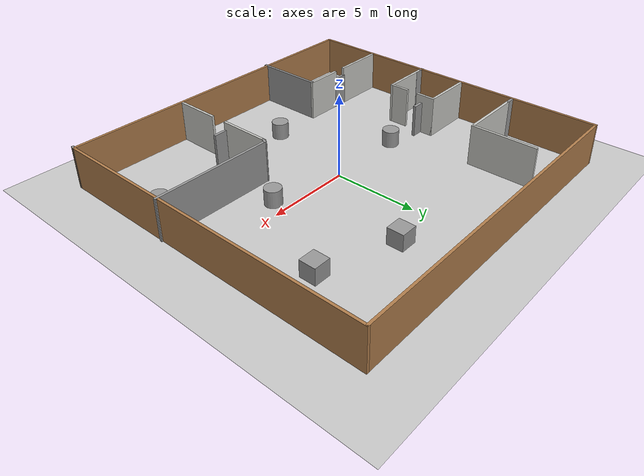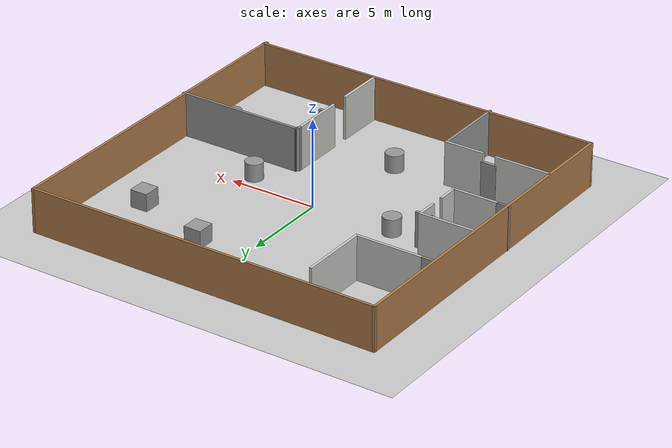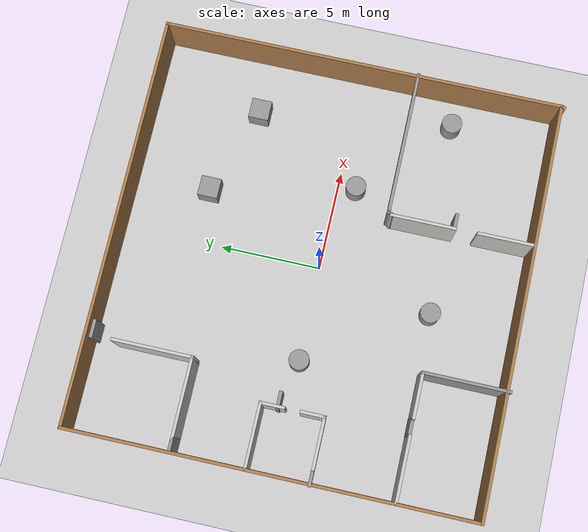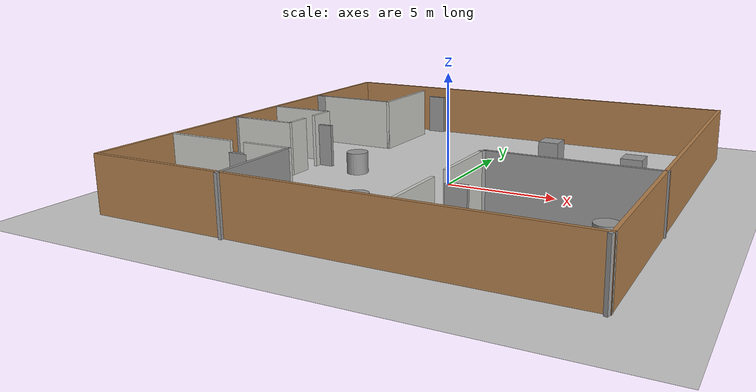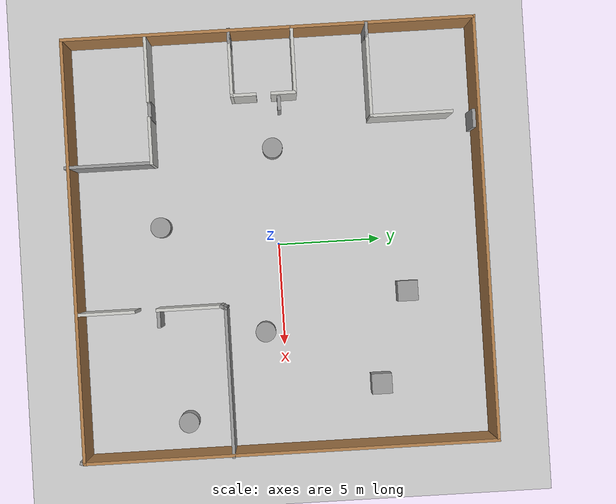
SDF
<sdf version="1.7">
 <world name="default">
  <light name="sun" type="directional">
   <pose>0 0 10 0 -0 0</pose>
   <diffuse>0.8 0.8 0.8 1</diffuse>
   <specular>0.2 0.2 0.2 1</specular>
   <attenuation>
    <range>1000</range>
    <constant>0.9</constant>
    <linear>0.01</linear>
    <quadratic>0.001</quadratic>
   </attenuation>
   <direction>-0.5 0.1 -0.9</direction>
   <spot><inner_angle>0</inner_angle><outer_angle>0</outer_angle><falloff>0</falloff></spot>
  </light>
  <model name="ground_plane">
   <static>1</static>
   <link name="link">
    <collision name="collision">
     <geometry><plane><normal>0 0 1</normal><size>100 100</size></plane></geometry>
     <surface>
      <contact><collide_bitmask>65535</collide_bitmask></contact>
      <friction><ode><mu>100</mu><mu2>50</mu2></ode></friction>
     </surface>
    </collision>
    <visual name="visual">
     <cast_shadows>0</cast_shadows>
     <geometry><plane><normal>0 0 1</normal><size>100 100</size></plane></geometry>
     <material>
      <script><uri>file://media/materials/scripts/gazebo.material</uri><name>Gazebo/Grey</name></script>
     </material>
    </visual>
   </link>
  </model>
  <gravity>0 0 -9.8</gravity>
  <magnetic_field>6e-06 2.3e-05 -4.2e-05</magnetic_field>
  <atmosphere type="adiabatic"/>
  <physics type="ode">
   <max_step_size>0.001</max_step_size>
   <real_time_factor>1</real_time_factor>
   <real_time_update_rate>1000</real_time_update_rate>
  </physics>
  <scene><ambient>0.4 0.4 0.4 1</ambient><background>0.7 0.7 0.7 1</background><shadows>1</shadows></scene>
  <spherical_coordinates>
   <surface_model>EARTH_WGS84</surface_model>
   <latitude_deg>0</latitude_deg>
   <longitude_deg>0</longitude_deg>
   <elevation>0</elevation>
   <heading_deg>0</heading_deg>
  </spherical_coordinates>
  <model name="shop">
   <pose>-0.17448 -0.04481 0 0 -0 0</pose>
   <link name="Door_0">
    <collision name="Door_0_Collision">
     <geometry><box><size>0.9 0.17 2</size></box></geometry>
     <pose>0 0 1 0 -0 0</pose>
    </collision>
    <visual name="Door_0_Visual">
     <pose>0 0 1 0 -0 0</pose>
     <geometry><box><size>0.9 0.17 2</size></box></geometry>
     <material>
      <script><uri>file://media/materials/scripts/gazebo.material</uri><name>Gazebo/Grey</name></script>
     </material>
    </visual>
    <pose>-5.35451 9.82138 0 0 -0 0</pose>
   </link>
   <link name="Door_1">
    <collision name="Door_1_Collision">
     <geometry><box><size>0.9 0.17 2</size></box></geometry>
     <pose>0 0 1 0 -0 0</pose>
    </collision>
    <visual name="Door_1_Visual">
     <pose>0 0 1 0 -0 0</pose>
     <geometry><box><size>0.9 0.17 2</size></box></geometry>
     <material>
      <script><uri>file://media/materials/scripts/gazebo.material</uri><name>Gazebo/Grey</name></script>
     </material>
    </visual>
    <pose>3.45188 -5.96153 0 0 -0 0</pose>
   </link>
   <link name="Door_2">
    <collision name="Door_2_Collision">
     <geometry><box><size>0.9 0.17 2</size></box></geometry>
     <pose>0 0 1 0 -0 0</pose>
    </collision>
    <visual name="Door_2_Visual">
     <pose>0 0 1 0 -0 0</pose>
     <geometry><box><size>0.9 0.17 2</size></box></geometry>
     <material>
      <script><uri>file://media/materials/scripts/gazebo.material</uri><name>Gazebo/Grey</name></script>
     </material>
    </visual>
    <pose>-6.61322 -5.83259 0 0 -0 0</pose>
   </link>
   <link name="Door_3">
    <collision name="Door_3_Collision">
     <geometry><box><size>0.9 0.17 2</size></box></geometry>
     <pose>0 0 1 0 -0 0</pose>
    </collision>
    <visual name="Door_3_Visual">
     <pose>0 0 1 0 -0 0</pose>
     <geometry><box><size>0.9 0.17 2</size></box></geometry>
     <material>
      <script><uri>file://media/materials/scripts/gazebo.material</uri><name>Gazebo/Grey</name></script>
     </material>
    </visual>
    <pose>-6.73628 0.443254 0 0 -0 0</pose>
   </link>
   <link name="Wall_1">
    <collision name="Wall_1_Collision">
     <geometry><box><size>4 0.15 2.5</size></box></geometry>
     <pose>0 0 1.25 0 -0 0</pose>
    </collision>
    <visual name="Wall_1_Visual">
     <pose>0 0 1.25 0 -0 0</pose>
     <geometry><box><size>4 0.15 2.5</size></box></geometry>
     <material>
      <script><uri>file://media/materials/scripts/gazebo.material</uri><name>Gazebo/CeilingTiled</name></script>
      <ambient>1 1 1 1</ambient>
     </material>
     <meta><layer>0</layer></meta>
    </visual>
    <pose>-7.61817 4.83351 0 0 -0 0</pose>
   </link>
   <link name="Wall_11">
    <collision name="Wall_11_Collision">
     <geometry><box><size>7.25 0.15 2.5</size></box></geometry>
     <pose>0 0 1.25 0 -0 0</pose>
    </collision>
    <visual name="Wall_11_Visual">
     <pose>0 0 1.25 0 -0 0</pose>
     <geometry><box><size>7.25 0.15 2.5</size></box></geometry>
     <material>
      <script><uri>file://media/materials/scripts/gazebo.material</uri><name>Gazebo/Grey</name></script>
      <ambient>1 1 1 1</ambient>
     </material>
     <meta><layer>0</layer></meta>
    </visual>
    <pose>6.68019 -2.69355 0 0 -0 3.14159</pose>
   </link>
   <link name="Wall_18">
    <collision name="Wall_18_Collision">
     <geometry><box><size>3.25 0.15 2.5</size></box></geometry>
     <pose>0 0 1.25 0 -0 0</pose>
    </collision>
    <visual name="Wall_18_Visual">
     <pose>0 0 1.25 0 -0 0</pose>
     <geometry><box><size>3.25 0.15 2.5</size></box></geometry>
     <material>
      <script><uri>file://media/materials/scripts/gazebo.material</uri><name>Gazebo/CeilingTiled</name></script>
      <ambient>1 1 1 1</ambient>
     </material>
     <meta><layer>0</layer></meta>
    </visual>
    <pose>3.02225 -4.41015 0 0 -0 1.5708</pose>
   </link>
   <link name="Wall_19">
    <collision name="Wall_19_Collision">
     <geometry><box><size>0.378834 0.15 2.5</size></box></geometry>
     <pose>0 0 1.25 0 -0 0</pose>
    </collision>
    <visual name="Wall_19_Visual">
     <pose>0 0 1.25 0 -0 0</pose>
     <geometry><box><size>0.378834 0.15 2.5</size></box></geometry>
     <material>
      <script><uri>file://media/materials/scripts/gazebo.material</uri><name>Gazebo/Grey</name></script>
      <ambient>1 1 1 1</ambient>
     </material>
     <meta><layer>0</layer></meta>
    </visual>
    <pose>3.07622 -2.79444 0 0 -0 1.07959</pose>
   </link>
   <link name="Wall_2">
    <collision name="Wall_2_Collision">
     <geometry><box><size>4 0.15 2.5</size></box></geometry>
     <pose>0 0 1.25 0 -0 0</pose>
    </collision>
    <visual name="Wall_2_Visual">
     <pose>0 0 1.25 0 -0 0</pose>
     <geometry><box><size>4 0.15 2.5</size></box></geometry>
     <material>
      <script><uri>file://media/materials/scripts/gazebo.material</uri><name>Gazebo/CeilingTiled</name></script>
      <ambient>1 1 1 1</ambient>
     </material>
     <meta><layer>0</layer></meta>
    </visual>
    <pose>-5.69317 6.75851 0 0 -0 1.5708</pose>
   </link>
   <link name="Wall_24">
    <collision name="Wall_24_Collision">
     <geometry><box><size>4.25 0.15 2.5</size></box></geometry>
     <pose>0 0 1.25 0 -0 0</pose>
    </collision>
    <visual name="Wall_24_Visual">
     <pose>0 0 1.25 0 -0 0</pose>
     <geometry><box><size>4.25 0.15 2.5</size></box></geometry>
     <material>
      <script><uri>file://media/materials/scripts/gazebo.material</uri><name>Gazebo/Grey</name></script>
      <ambient>1 1 1 1</ambient>
     </material>
     <meta><layer>0</layer></meta>
    </visual>
    <pose>-4.04657 -7.92305 0 0 -0 -1.5708</pose>
   </link>
   <link name="Wall_26">
    <collision name="Wall_26_Collision">
     <geometry><box><size>3.25 0.15 2.5</size></box></geometry>
     <pose>0 0 1.25 0 -0 0</pose>
    </collision>
    <visual name="Wall_26_Visual">
     <pose>0 0 1.25 0 -0 0</pose>
     <geometry><box><size>3.25 0.15 2.5</size></box></geometry>
     <material>
      <script><uri>file://media/materials/scripts/gazebo.material</uri><name>Gazebo/CeilingTiled</name></script>
      <ambient>1 1 1 1</ambient>
     </material>
     <meta><layer>0</layer></meta>
    </visual>
    <pose>-8.59657 -5.83259 0 0 -0 0</pose>
   </link>
   <link name="Wall_28">
    <collision name="Wall_28_Collision">
     <geometry><box><size>2.30038 0.15 2.5</size></box></geometry>
     <pose>0 0 1.25 0 -0 0</pose>
    </collision>
    <visual name="Wall_28_Visual">
     <pose>0 0 1.25 0 -0 0</pose>
     <geometry><box><size>2.30038 0.15 2.5</size></box></geometry>
     <material>
      <script><uri>file://media/materials/scripts/gazebo.material</uri><name>Gazebo/CeilingTiled</name></script>
      <ambient>1 1 1 1</ambient>
     </material>
     <meta><layer>0</layer></meta>
    </visual>
    <pose>-5.12157 -5.83259 0 0 -0 0</pose>
   </link>
   <link name="Wall_33">
    <collision name="Wall_33_Collision">
     <geometry><box><size>3.25 0.15 2.5</size></box></geometry>
     <pose>0 0 1.25 0 -0 0</pose>
    </collision>
    <visual name="Wall_33_Visual">
     <pose>0 0 1.25 0 -0 0</pose>
     <geometry><box><size>3.25 0.15 2.5</size></box></geometry>
     <material>
      <script><uri>file://media/materials/scripts/gazebo.material</uri><name>Gazebo/CeilingTiled</name></script>
      <ambient>1 1 1 1</ambient>
     </material>
     <meta><layer>0</layer></meta>
    </visual>
    <pose>-8.60046 1.24312 0 0 -0 0</pose>
   </link>
   <link name="Wall_34">
    <collision name="Wall_34_Collision">
     <geometry><box><size>1.25 0.15 2.5</size></box></geometry>
     <pose>0 0 1.25 0 -0 0</pose>
    </collision>
    <visual name="Wall_34_Visual">
     <pose>0 0 1.25 0 -0 0</pose>
     <geometry><box><size>1.25 0.15 2.5</size></box></geometry>
     <material>
      <script><uri>file://media/materials/scripts/gazebo.material</uri><name>Gazebo/CeilingTiled</name></script>
      <ambient>1 1 1 1</ambient>
     </material>
     <meta><layer>0</layer></meta>
    </visual>
    <pose>-7.05046 0.693117 0 0 -0 -1.5708</pose>
   </link>
   <link name="Wall_36">
    <collision name="Wall_36_Collision">
     <geometry><box><size>1.25 0.15 2.5</size></box></geometry>
     <pose>0 0 1.25 0 -0 0</pose>
    </collision>
    <visual name="Wall_36_Visual">
     <pose>0 0 1.25 0 -0 0</pose>
     <geometry><box><size>1.25 0.15 2.5</size></box></geometry>
     <material>
      <script><uri>file://media/materials/scripts/gazebo.material</uri><name>Gazebo/CeilingTiled</name></script>
      <ambient>1 1 1 1</ambient>
     </material>
     <meta><layer>0</layer></meta>
    </visual>
    <pose>-7.05046 -1.25688 0 0 -0 -1.5708</pose>
   </link>
   <link name="Wall_37">
    <collision name="Wall_37_Collision">
     <geometry><box><size>3 0.15 2.5</size></box></geometry>
     <pose>0 0 1.25 0 -0 0</pose>
    </collision>
    <visual name="Wall_37_Visual">
     <pose>0 0 1.25 0 -0 0</pose>
     <geometry><box><size>3 0.15 2.5</size></box></geometry>
     <material>
      <script><uri>file://media/materials/scripts/gazebo.material</uri><name>Gazebo/CeilingTiled</name></script>
      <ambient>1 1 1 1</ambient>
     </material>
     <meta><layer>0</layer></meta>
    </visual>
    <pose>-8.47546 -1.80688 0 0 -0 3.14159</pose>
   </link>
   <link name="Wall_45">
    <collision name="Wall_45_Collision">
     <geometry><box><size>20.5 0.15 2.5</size></box></geometry>
     <pose>0 0 1.25 0 -0 0</pose>
    </collision>
    <visual name="Wall_45_Visual">
     <pose>0 0 1.25 0 -0 0</pose>
     <geometry><box><size>20.5 0.15 2.5</size></box></geometry>
     <material>
      <script><uri>file://media/materials/scripts/gazebo.material</uri><name>Gazebo/Wood</name></script>
      <ambient>1 1 1 1</ambient>
     </material>
     <meta><layer>0</layer></meta>
    </visual>
    <pose>-0.014737 10.0041 0 0 -0 0</pose>
   </link>
   <link name="Wall_46">
    <collision name="Wall_46_Collision">
     <geometry><box><size>20 0.15 2.5</size></box></geometry>
     <pose>0 0 1.25 0 -0 0</pose>
    </collision>
    <visual name="Wall_46_Visual">
     <pose>0 0 1.25 0 -0 0</pose>
     <geometry><box><size>20 0.15 2.5</size></box></geometry>
     <material>
      <script><uri>file://media/materials/scripts/gazebo.material</uri><name>Gazebo/Wood</name></script>
      <ambient>1 1 1 1</ambient>
     </material>
     <meta><layer>0</layer></meta>
    </visual>
    <pose>10.1603 0.079142 0 0 -0 -1.5708</pose>
   </link>
   <link name="Wall_47">
    <collision name="Wall_47_Collision">
     <geometry><box><size>0.296166 0.15 2.5</size></box></geometry>
     <pose>0 0 1.25 0 -0 0</pose>
    </collision>
    <visual name="Wall_47_Visual">
     <pose>0 0 1.25 0 -0 0</pose>
     <geometry><box><size>0.296166 0.15 2.5</size></box></geometry>
     <material>
      <script><uri>file://media/materials/scripts/gazebo.material</uri><name>Gazebo/Grey</name></script>
      <ambient>1 1 1 1</ambient>
     </material>
     <meta><layer>0</layer></meta>
    </visual>
    <pose>10.14 -9.91609 0 0 -0 -1.85124</pose>
   </link>
   <link name="Wall_52">
    <collision name="Wall_52_Collision">
     <geometry><box><size>0.75 0.15 2.5</size></box></geometry>
     <pose>0 0 1.25 0 -0 0</pose>
    </collision>
    <visual name="Wall_52_Visual">
     <pose>0 0 1.25 0 -0 0</pose>
     <geometry><box><size>0.75 0.15 2.5</size></box></geometry>
     <material>
      <script><uri>file://media/materials/scripts/gazebo.material</uri><name>Gazebo/Grey</name></script>
      <ambient>1 1 1 1</ambient>
     </material>
     <meta><layer>0</layer></meta>
    </visual>
    <pose>-9.93019 -1.80246 0 0 -0 0</pose>
   </link>
   <link name="Wall_54">
    <collision name="Wall_54_Collision">
     <geometry><box><size>0.75 0.15 2.5</size></box></geometry>
     <pose>0 0 1.25 0 -0 0</pose>
    </collision>
    <visual name="Wall_54_Visual">
     <pose>0 0 1.25 0 -0 0</pose>
     <geometry><box><size>0.75 0.15 2.5</size></box></geometry>
     <material>
      <script><uri>file://media/materials/scripts/gazebo.material</uri><name>Gazebo/Grey</name></script>
      <ambient>1 1 1 1</ambient>
     </material>
     <meta><layer>0</layer></meta>
    </visual>
    <pose>-9.84317 4.83351 0 0 -0 3.14159</pose>
   </link>
   <link name="Wall_56">
    <collision name="Wall_56_Collision">
     <geometry><box><size>20 0.15 2.5</size></box></geometry>
     <pose>0 0 1.25 0 -0 0</pose>
    </collision>
    <visual name="Wall_56_Visual">
     <pose>0 0 1.25 0 -0 0</pose>
     <geometry><box><size>20 0.15 2.5</size></box></geometry>
     <material>
      <script><uri>file://media/materials/scripts/gazebo.material</uri><name>Gazebo/Wood</name></script>
      <ambient>1 1 1 1</ambient>
     </material>
     <meta><layer>0</layer></meta>
    </visual>
    <pose>-10.1897 0.079142 0 0 -0 -1.5708</pose>
   </link>
   <link name="Wall_60">
    <collision name="Wall_60_Collision">
     <geometry><box><size>20.5 0.15 2.5</size></box></geometry>
     <pose>0 0 1.25 0 -0 0</pose>
    </collision>
    <visual name="Wall_60_Visual">
     <pose>0 0 1.25 0 -0 0</pose>
     <geometry><box><size>20.5 0.15 2.5</size></box></geometry>
     <material>
      <script><uri>file://media/materials/scripts/gazebo.material</uri><name>Gazebo/Wood</name></script>
      <ambient>1 1 1 1</ambient>
     </material>
     <meta><layer>0</layer></meta>
    </visual>
    <pose>-0.014737 -9.84586 0 0 -0 0</pose>
   </link>
   <link name="Wall_62">
    <collision name="Wall_62_Collision">
     <geometry><box><size>2.75 0.15 2.5</size></box></geometry>
     <pose>0 0 1.25 0 -0 0</pose>
    </collision>
    <visual name="Wall_62_Visual">
     <pose>0 0 1.25 0 -0 0</pose>
     <geometry><box><size>2.75 0.15 2.5</size></box></geometry>
     <material>
      <script><uri>file://media/materials/scripts/gazebo.material</uri><name>Gazebo/CeilingTiled</name></script>
      <ambient>1 1 1 1</ambient>
     </material>
     <meta><layer>0</layer></meta>
    </visual>
    <pose>3.03924 -8.40215 0 0 -0 -1.5708</pose>
   </link>
   <static>1</static>
  </model>
  <model name="unit_cylinder">
   <pose>4.28005 -0.893378 0.499998 3e-06 -4e-06 0</pose>
   <link name="link">
    <inertial>
     <mass>1</mass>
     <inertia><ixx>0.145833</ixx><ixy>0</ixy><ixz>0</ixz><iyy>0.145833</iyy><iyz>0</iyz><izz>0.125</izz></inertia>
    </inertial>
    <collision name="collision">
     <geometry><cylinder><radius>0.5</radius><length>1</length></cylinder></geometry>
    </collision>
    <visual name="visual">
     <geometry><cylinder><radius>0.5</radius><length>1</length></cylinder></geometry>
     <material>
      <script><name>Gazebo/Grey</name><uri>file://media/materials/scripts/gazebo.material</uri></script>
     </material>
    </visual>
   </link>
  </model>
  <model name="unit_box">
   <pose>2.65989 6.18992 0.499995 -1e-05 -0 -0</pose>
   <link name="link">
    <inertial>
     <mass>1</mass>
     <inertia>
      <ixx>0.166667</ixx>
      <ixy>0</ixy>
      <ixz>0</ixz>
      <iyy>0.166667</iyy>
      <iyz>0</iyz>
      <izz>0.166667</izz>
     </inertia>
    </inertial>
    <collision name="collision"><geometry><box><size>1 1 1</size></box></geometry></collision>
    <visual name="visual">
     <geometry><box><size>1 1 1</size></box></geometry>
     <material>
      <script><name>Gazebo/Grey</name><uri>file://media/materials/scripts/gazebo.material</uri></script>
     </material>
    </visual>
   </link>
  </model>
  <model name="unit_cylinder_0">
   <pose>-4.74562 -0.050047 0.499997 3e-06 4e-06 -0</pose>
   <link name="link">
    <inertial>
     <mass>1</mass>
     <inertia><ixx>0.145833</ixx><ixy>0</ixy><ixz>0</ixz><iyy>0.145833</iyy><iyz>0</iyz><izz>0.125</izz></inertia>
    </inertial>
    <collision name="collision">
     <geometry><cylinder><radius>0.5</radius><length>1</length></cylinder></geometry>
    </collision>
    <visual name="visual">
     <geometry><cylinder><radius>0.5</radius><length>1</length></cylinder></geometry>
     <material>
      <script><name>Gazebo/Grey</name><uri>file://media/materials/scripts/gazebo.material</uri></script>
     </material>
    </visual>
   </link>
  </model>
  <model name="unit_cylinder_1">
   <pose>-1.1379 -5.76132 0.499993 -3e-06 -4e-06 -0</pose>
   <link name="link">
    <inertial>
     <mass>1</mass>
     <inertia><ixx>0.145833</ixx><ixy>0</ixy><ixz>0</ixz><iyy>0.145833</iyy><iyz>0</iyz><izz>0.125</izz></inertia>
    </inertial>
    <collision name="collision">
     <geometry><cylinder><radius>0.5</radius><length>1</length></cylinder></geometry>
    </collision>
    <visual name="visual">
     <geometry><cylinder><radius>0.5</radius><length>1</length></cylinder></geometry>
     <material>
      <script><name>Gazebo/Grey</name><uri>file://media/materials/scripts/gazebo.material</uri></script>
     </material>
    </visual>
   </link>
  </model>
  <model name="unit_box_0">
   <pose>7.14046 4.65516 0.499995 0 1e-05 0</pose>
   <link name="link">
    <inertial>
     <mass>1</mass>
     <inertia>
      <ixx>0.166667</ixx>
      <ixy>0</ixy>
      <ixz>0</ixz>
      <iyy>0.166667</iyy>
      <iyz>0</iyz>
      <izz>0.166667</izz>
     </inertia>
    </inertial>
    <collision name="collision"><geometry><box><size>1 1 1</size></box></geometry></collision>
    <visual name="visual">
     <geometry><box><size>1 1 1</size></box></geometry>
     <material>
      <script><name>Gazebo/Grey</name><uri>file://media/materials/scripts/gazebo.material</uri></script>
     </material>
    </visual>
   </link>
  </model>
  <model name="unit_cylinder_2">
   <pose>8.5014 -4.90505 0.499997 3e-06 4e-06 -0</pose>
   <link name="link">
    <inertial>
     <mass>1</mass>
     <inertia><ixx>0.145833</ixx><ixy>0</ixy><ixz>0</ixz><iyy>0.145833</iyy><iyz>0</iyz><izz>0.125</izz></inertia>
    </inertial>
    <collision name="collision">
     <geometry><cylinder><radius>0.5</radius><length>1</length></cylinder></geometry>
    </collision>
    <visual name="visual">
     <geometry><cylinder><radius>0.5</radius><length>1</length></cylinder></geometry>
     <material>
      <script><name>Gazebo/Grey</name><uri>file://media/materials/scripts/gazebo.material</uri></script>
     </material>
    </visual>
   </link>
  </model>
 </world>
</sdf>
